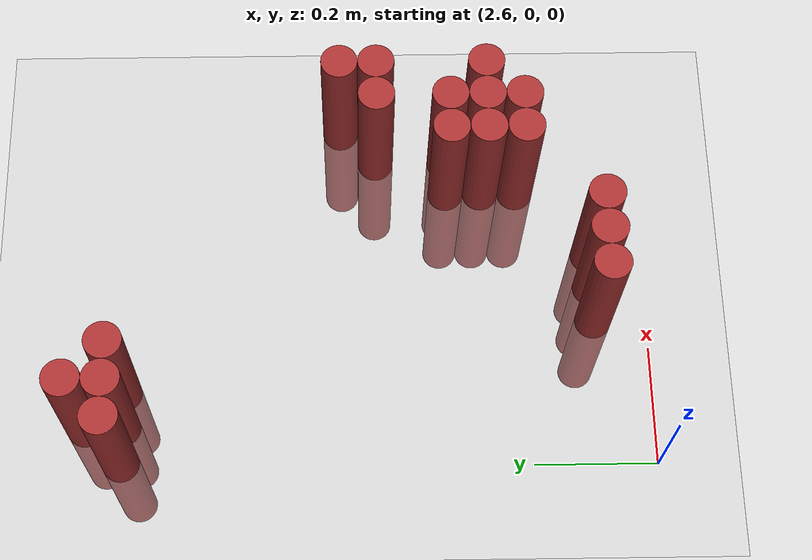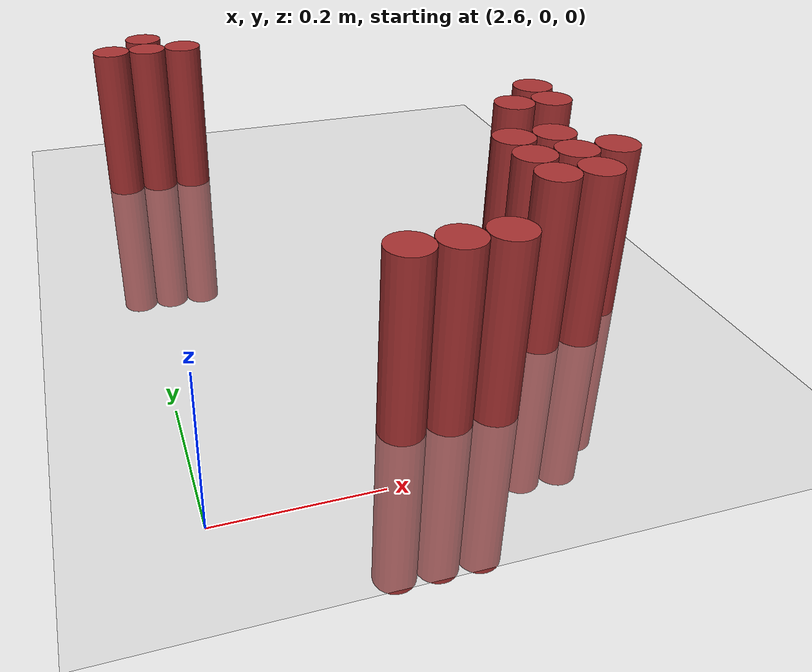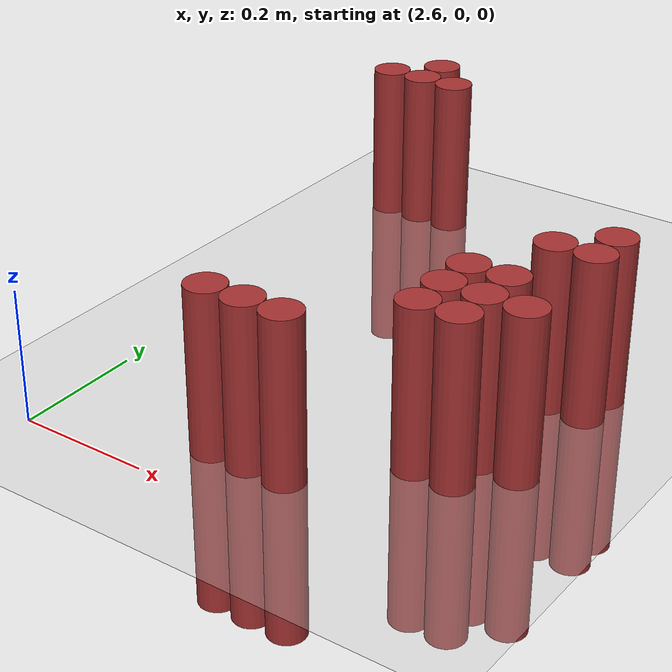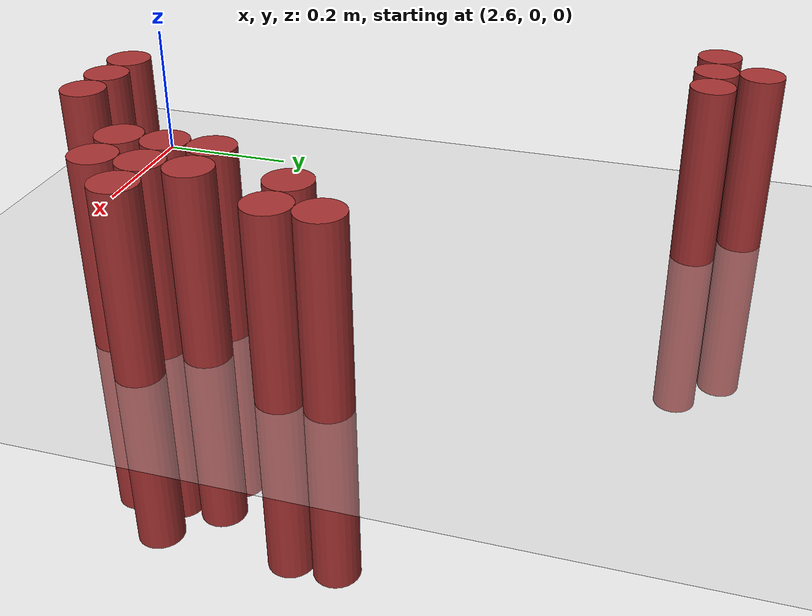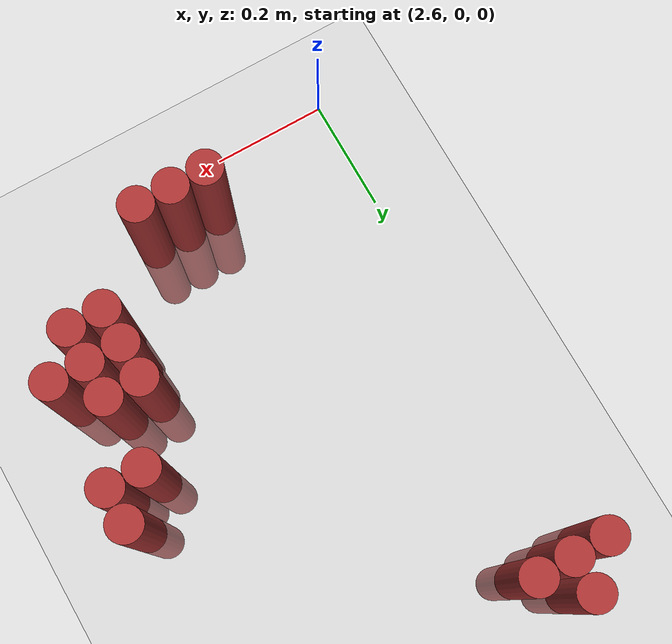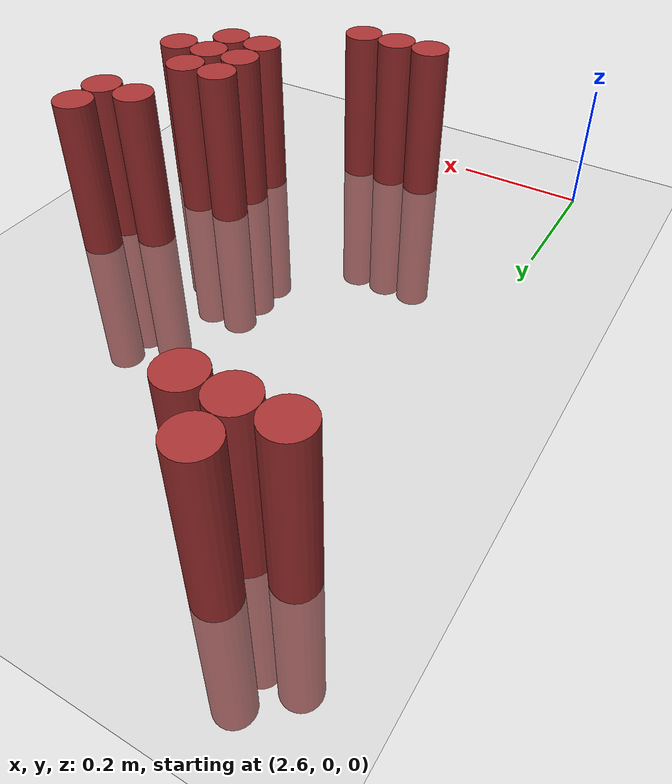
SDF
<sdf version="1.6">
 <world name="default">
  <model name="ground_plane">
   <static>1</static>
   <link name="link">
    <collision name="collision">
     <geometry><plane><normal>0 0 1</normal><size>100 100</size></plane></geometry>
     <surface><friction><ode><mu>100</mu><mu2>50</mu2></ode></friction></surface>
    </collision>
    <visual name="visual">
     <cast_shadows>0</cast_shadows>
     <geometry><plane><normal>0 0 1</normal><size>100 100</size></plane></geometry>
     <material>
      <script><uri>file://media/materials/scripts/gazebo.material</uri><name>Gazebo/Grey</name></script>
     </material>
    </visual>
   </link>
  </model>
  <model name="unit_cylinder_178">
   <static>1</static>
   <pose>2.670000 0.930000 0.000000 0.000000 0.000000 0.000000</pose>
   <link name="link">
    <inertial>
     <mass>1</mass>
     <inertia><ixx>0.145833</ixx><ixy>0</ixy><ixz>0</ixz><iyy>0.145833</iyy><iyz>0</iyz><izz>0.125</izz></inertia>
    </inertial>
    <collision name="collision">
     <geometry><cylinder><radius>0.030000</radius><length>0.5</length></cylinder></geometry>
    </collision>
    <visual name="visual">
     <geometry><cylinder><radius>0.030000</radius><length>0.5</length></cylinder></geometry>
     <material>
      <ambient>0.648000 0.192000 0.192000 1</ambient>
      <diffuse>0.648000 0.192000 0.192000 1</diffuse>
     </material>
     <material>
      <script><name>Gazebo/Grey</name><uri>file://media/materials/scripts/gazebo.material</uri></script>
     </material>
    </visual>
   </link>
  </model>
  <model name="unit_cylinder_181">
   <static>1</static>
   <pose>2.610000 0.870000 0.000000 0.000000 0.000000 0.000000</pose>
   <link name="link">
    <inertial>
     <mass>1</mass>
     <inertia><ixx>0.145833</ixx><ixy>0</ixy><ixz>0</ixz><iyy>0.145833</iyy><iyz>0</iyz><izz>0.125</izz></inertia>
    </inertial>
    <collision name="collision">
     <geometry><cylinder><radius>0.030000</radius><length>0.5</length></cylinder></geometry>
    </collision>
    <visual name="visual">
     <geometry><cylinder><radius>0.030000</radius><length>0.5</length></cylinder></geometry>
     <material>
      <ambient>0.648000 0.192000 0.192000 1</ambient>
      <diffuse>0.648000 0.192000 0.192000 1</diffuse>
     </material>
     <material>
      <script><name>Gazebo/Grey</name><uri>file://media/materials/scripts/gazebo.material</uri></script>
     </material>
    </visual>
   </link>
  </model>
  <model name="unit_cylinder_182">
   <static>1</static>
   <pose>2.670000 0.870000 0.000000 0.000000 0.000000 0.000000</pose>
   <link name="link">
    <inertial>
     <mass>1</mass>
     <inertia><ixx>0.145833</ixx><ixy>0</ixy><ixz>0</ixz><iyy>0.145833</iyy><iyz>0</iyz><izz>0.125</izz></inertia>
    </inertial>
    <collision name="collision">
     <geometry><cylinder><radius>0.030000</radius><length>0.5</length></cylinder></geometry>
    </collision>
    <visual name="visual">
     <geometry><cylinder><radius>0.030000</radius><length>0.5</length></cylinder></geometry>
     <material>
      <ambient>0.648000 0.192000 0.192000 1</ambient>
      <diffuse>0.648000 0.192000 0.192000 1</diffuse>
     </material>
     <material>
      <script><name>Gazebo/Grey</name><uri>file://media/materials/scripts/gazebo.material</uri></script>
     </material>
    </visual>
   </link>
  </model>
  <model name="unit_cylinder_183">
   <static>1</static>
   <pose>2.730000 0.870000 0.000000 0.000000 0.000000 0.000000</pose>
   <link name="link">
    <inertial>
     <mass>1</mass>
     <inertia><ixx>0.145833</ixx><ixy>0</ixy><ixz>0</ixz><iyy>0.145833</iyy><iyz>0</iyz><izz>0.125</izz></inertia>
    </inertial>
    <collision name="collision">
     <geometry><cylinder><radius>0.030000</radius><length>0.5</length></cylinder></geometry>
    </collision>
    <visual name="visual">
     <geometry><cylinder><radius>0.030000</radius><length>0.5</length></cylinder></geometry>
     <material>
      <ambient>0.648000 0.192000 0.192000 1</ambient>
      <diffuse>0.648000 0.192000 0.192000 1</diffuse>
     </material>
     <material>
      <script><name>Gazebo/Grey</name><uri>file://media/materials/scripts/gazebo.material</uri></script>
     </material>
    </visual>
   </link>
  </model>
  <model name="unit_cylinder_195">
   <static>1</static>
   <pose>3.210000 0.510000 0.000000 0.000000 0.000000 0.000000</pose>
   <link name="link">
    <inertial>
     <mass>1</mass>
     <inertia><ixx>0.145833</ixx><ixy>0</ixy><ixz>0</ixz><iyy>0.145833</iyy><iyz>0</iyz><izz>0.125</izz></inertia>
    </inertial>
    <collision name="collision">
     <geometry><cylinder><radius>0.030000</radius><length>0.5</length></cylinder></geometry>
    </collision>
    <visual name="visual">
     <geometry><cylinder><radius>0.030000</radius><length>0.5</length></cylinder></geometry>
     <material>
      <ambient>0.648000 0.192000 0.192000 1</ambient>
      <diffuse>0.648000 0.192000 0.192000 1</diffuse>
     </material>
     <material>
      <script><name>Gazebo/Grey</name><uri>file://media/materials/scripts/gazebo.material</uri></script>
     </material>
    </visual>
   </link>
  </model>
  <model name="unit_cylinder_199">
   <static>1</static>
   <pose>3.150000 0.450000 0.000000 0.000000 0.000000 0.000000</pose>
   <link name="link">
    <inertial>
     <mass>1</mass>
     <inertia><ixx>0.145833</ixx><ixy>0</ixy><ixz>0</ixz><iyy>0.145833</iyy><iyz>0</iyz><izz>0.125</izz></inertia>
    </inertial>
    <collision name="collision">
     <geometry><cylinder><radius>0.030000</radius><length>0.5</length></cylinder></geometry>
    </collision>
    <visual name="visual">
     <geometry><cylinder><radius>0.030000</radius><length>0.5</length></cylinder></geometry>
     <material>
      <ambient>0.648000 0.192000 0.192000 1</ambient>
      <diffuse>0.648000 0.192000 0.192000 1</diffuse>
     </material>
     <material>
      <script><name>Gazebo/Grey</name><uri>file://media/materials/scripts/gazebo.material</uri></script>
     </material>
    </visual>
   </link>
  </model>
  <model name="unit_cylinder_200">
   <static>1</static>
   <pose>3.210000 0.450000 0.000000 0.000000 0.000000 0.000000</pose>
   <link name="link">
    <inertial>
     <mass>1</mass>
     <inertia><ixx>0.145833</ixx><ixy>0</ixy><ixz>0</ixz><iyy>0.145833</iyy><iyz>0</iyz><izz>0.125</izz></inertia>
    </inertial>
    <collision name="collision">
     <geometry><cylinder><radius>0.030000</radius><length>0.5</length></cylinder></geometry>
    </collision>
    <visual name="visual">
     <geometry><cylinder><radius>0.030000</radius><length>0.5</length></cylinder></geometry>
     <material>
      <ambient>0.648000 0.192000 0.192000 1</ambient>
      <diffuse>0.648000 0.192000 0.192000 1</diffuse>
     </material>
     <material>
      <script><name>Gazebo/Grey</name><uri>file://media/materials/scripts/gazebo.material</uri></script>
     </material>
    </visual>
   </link>
  </model>
  <model name="unit_cylinder_204">
   <static>1</static>
   <pose>3.090000 0.330000 0.000000 0.000000 0.000000 0.000000</pose>
   <link name="link">
    <inertial>
     <mass>1</mass>
     <inertia><ixx>0.145833</ixx><ixy>0</ixy><ixz>0</ixz><iyy>0.145833</iyy><iyz>0</iyz><izz>0.125</izz></inertia>
    </inertial>
    <collision name="collision">
     <geometry><cylinder><radius>0.030000</radius><length>0.5</length></cylinder></geometry>
    </collision>
    <visual name="visual">
     <geometry><cylinder><radius>0.030000</radius><length>0.5</length></cylinder></geometry>
     <material>
      <ambient>0.648000 0.192000 0.192000 1</ambient>
      <diffuse>0.648000 0.192000 0.192000 1</diffuse>
     </material>
     <material>
      <script><name>Gazebo/Grey</name><uri>file://media/materials/scripts/gazebo.material</uri></script>
     </material>
    </visual>
   </link>
  </model>
  <model name="unit_cylinder_205">
   <static>1</static>
   <pose>3.150000 0.330000 0.000000 0.000000 0.000000 0.000000</pose>
   <link name="link">
    <inertial>
     <mass>1</mass>
     <inertia><ixx>0.145833</ixx><ixy>0</ixy><ixz>0</ixz><iyy>0.145833</iyy><iyz>0</iyz><izz>0.125</izz></inertia>
    </inertial>
    <collision name="collision">
     <geometry><cylinder><radius>0.030000</radius><length>0.5</length></cylinder></geometry>
    </collision>
    <visual name="visual">
     <geometry><cylinder><radius>0.030000</radius><length>0.5</length></cylinder></geometry>
     <material>
      <ambient>0.648000 0.192000 0.192000 1</ambient>
      <diffuse>0.648000 0.192000 0.192000 1</diffuse>
     </material>
     <material>
      <script><name>Gazebo/Grey</name><uri>file://media/materials/scripts/gazebo.material</uri></script>
     </material>
    </visual>
   </link>
  </model>
  <model name="unit_cylinder_206">
   <static>1</static>
   <pose>3.090000 0.270000 0.000000 0.000000 0.000000 0.000000</pose>
   <link name="link">
    <inertial>
     <mass>1</mass>
     <inertia><ixx>0.145833</ixx><ixy>0</ixy><ixz>0</ixz><iyy>0.145833</iyy><iyz>0</iyz><izz>0.125</izz></inertia>
    </inertial>
    <collision name="collision">
     <geometry><cylinder><radius>0.030000</radius><length>0.5</length></cylinder></geometry>
    </collision>
    <visual name="visual">
     <geometry><cylinder><radius>0.030000</radius><length>0.5</length></cylinder></geometry>
     <material>
      <ambient>0.648000 0.192000 0.192000 1</ambient>
      <diffuse>0.648000 0.192000 0.192000 1</diffuse>
     </material>
     <material>
      <script><name>Gazebo/Grey</name><uri>file://media/materials/scripts/gazebo.material</uri></script>
     </material>
    </visual>
   </link>
  </model>
  <model name="unit_cylinder_207">
   <static>1</static>
   <pose>3.150000 0.270000 0.000000 0.000000 0.000000 0.000000</pose>
   <link name="link">
    <inertial>
     <mass>1</mass>
     <inertia><ixx>0.145833</ixx><ixy>0</ixy><ixz>0</ixz><iyy>0.145833</iyy><iyz>0</iyz><izz>0.125</izz></inertia>
    </inertial>
    <collision name="collision">
     <geometry><cylinder><radius>0.030000</radius><length>0.5</length></cylinder></geometry>
    </collision>
    <visual name="visual">
     <geometry><cylinder><radius>0.030000</radius><length>0.5</length></cylinder></geometry>
     <material>
      <ambient>0.648000 0.192000 0.192000 1</ambient>
      <diffuse>0.648000 0.192000 0.192000 1</diffuse>
     </material>
     <material>
      <script><name>Gazebo/Grey</name><uri>file://media/materials/scripts/gazebo.material</uri></script>
     </material>
    </visual>
   </link>
  </model>
  <model name="unit_cylinder_208">
   <static>1</static>
   <pose>3.210000 0.270000 0.000000 0.000000 0.000000 0.000000</pose>
   <link name="link">
    <inertial>
     <mass>1</mass>
     <inertia><ixx>0.145833</ixx><ixy>0</ixy><ixz>0</ixz><iyy>0.145833</iyy><iyz>0</iyz><izz>0.125</izz></inertia>
    </inertial>
    <collision name="collision">
     <geometry><cylinder><radius>0.030000</radius><length>0.5</length></cylinder></geometry>
    </collision>
    <visual name="visual">
     <geometry><cylinder><radius>0.030000</radius><length>0.5</length></cylinder></geometry>
     <material>
      <ambient>0.648000 0.192000 0.192000 1</ambient>
      <diffuse>0.648000 0.192000 0.192000 1</diffuse>
     </material>
     <material>
      <script><name>Gazebo/Grey</name><uri>file://media/materials/scripts/gazebo.material</uri></script>
     </material>
    </visual>
   </link>
  </model>
  <model name="unit_cylinder_209">
   <static>1</static>
   <pose>3.090000 0.210000 0.000000 0.000000 0.000000 0.000000</pose>
   <link name="link">
    <inertial>
     <mass>1</mass>
     <inertia><ixx>0.145833</ixx><ixy>0</ixy><ixz>0</ixz><iyy>0.145833</iyy><iyz>0</iyz><izz>0.125</izz></inertia>
    </inertial>
    <collision name="collision">
     <geometry><cylinder><radius>0.030000</radius><length>0.5</length></cylinder></geometry>
    </collision>
    <visual name="visual">
     <geometry><cylinder><radius>0.030000</radius><length>0.5</length></cylinder></geometry>
     <material>
      <ambient>0.648000 0.192000 0.192000 1</ambient>
      <diffuse>0.648000 0.192000 0.192000 1</diffuse>
     </material>
     <material>
      <script><name>Gazebo/Grey</name><uri>file://media/materials/scripts/gazebo.material</uri></script>
     </material>
    </visual>
   </link>
  </model>
  <model name="unit_cylinder_210">
   <static>1</static>
   <pose>3.150000 0.210000 0.000000 0.000000 0.000000 0.000000</pose>
   <link name="link">
    <inertial>
     <mass>1</mass>
     <inertia><ixx>0.145833</ixx><ixy>0</ixy><ixz>0</ixz><iyy>0.145833</iyy><iyz>0</iyz><izz>0.125</izz></inertia>
    </inertial>
    <collision name="collision">
     <geometry><cylinder><radius>0.030000</radius><length>0.5</length></cylinder></geometry>
    </collision>
    <visual name="visual">
     <geometry><cylinder><radius>0.030000</radius><length>0.5</length></cylinder></geometry>
     <material>
      <ambient>0.648000 0.192000 0.192000 1</ambient>
      <diffuse>0.648000 0.192000 0.192000 1</diffuse>
     </material>
     <material>
      <script><name>Gazebo/Grey</name><uri>file://media/materials/scripts/gazebo.material</uri></script>
     </material>
    </visual>
   </link>
  </model>
  <model name="unit_cylinder_223">
   <static>1</static>
   <pose>2.850000 0.090000 0.000000 0.000000 0.000000 0.000000</pose>
   <link name="link">
    <inertial>
     <mass>1</mass>
     <inertia><ixx>0.145833</ixx><ixy>0</ixy><ixz>0</ixz><iyy>0.145833</iyy><iyz>0</iyz><izz>0.125</izz></inertia>
    </inertial>
    <collision name="collision">
     <geometry><cylinder><radius>0.030000</radius><length>0.5</length></cylinder></geometry>
    </collision>
    <visual name="visual">
     <geometry><cylinder><radius>0.030000</radius><length>0.5</length></cylinder></geometry>
     <material>
      <ambient>0.648000 0.192000 0.192000 1</ambient>
      <diffuse>0.648000 0.192000 0.192000 1</diffuse>
     </material>
     <material>
      <script><name>Gazebo/Grey</name><uri>file://media/materials/scripts/gazebo.material</uri></script>
     </material>
    </visual>
   </link>
  </model>
  <model name="unit_cylinder_224">
   <static>1</static>
   <pose>2.910000 0.090000 0.000000 0.000000 0.000000 0.000000</pose>
   <link name="link">
    <inertial>
     <mass>1</mass>
     <inertia><ixx>0.145833</ixx><ixy>0</ixy><ixz>0</ixz><iyy>0.145833</iyy><iyz>0</iyz><izz>0.125</izz></inertia>
    </inertial>
    <collision name="collision">
     <geometry><cylinder><radius>0.030000</radius><length>0.5</length></cylinder></geometry>
    </collision>
    <visual name="visual">
     <geometry><cylinder><radius>0.030000</radius><length>0.5</length></cylinder></geometry>
     <material>
      <ambient>0.648000 0.192000 0.192000 1</ambient>
      <diffuse>0.648000 0.192000 0.192000 1</diffuse>
     </material>
     <material>
      <script><name>Gazebo/Grey</name><uri>file://media/materials/scripts/gazebo.material</uri></script>
     </material>
    </visual>
   </link>
  </model>
  <model name="unit_cylinder_225">
   <static>1</static>
   <pose>2.970000 0.090000 0.000000 0.000000 0.000000 0.000000</pose>
   <link name="link">
    <inertial>
     <mass>1</mass>
     <inertia><ixx>0.145833</ixx><ixy>0</ixy><ixz>0</ixz><iyy>0.145833</iyy><iyz>0</iyz><izz>0.125</izz></inertia>
    </inertial>
    <collision name="collision">
     <geometry><cylinder><radius>0.030000</radius><length>0.5</length></cylinder></geometry>
    </collision>
    <visual name="visual">
     <geometry><cylinder><radius>0.030000</radius><length>0.5</length></cylinder></geometry>
     <material>
      <ambient>0.648000 0.192000 0.192000 1</ambient>
      <diffuse>0.648000 0.192000 0.192000 1</diffuse>
     </material>
     <material>
      <script><name>Gazebo/Grey</name><uri>file://media/materials/scripts/gazebo.material</uri></script>
     </material>
    </visual>
   </link>
  </model>
 </world>
</sdf>
